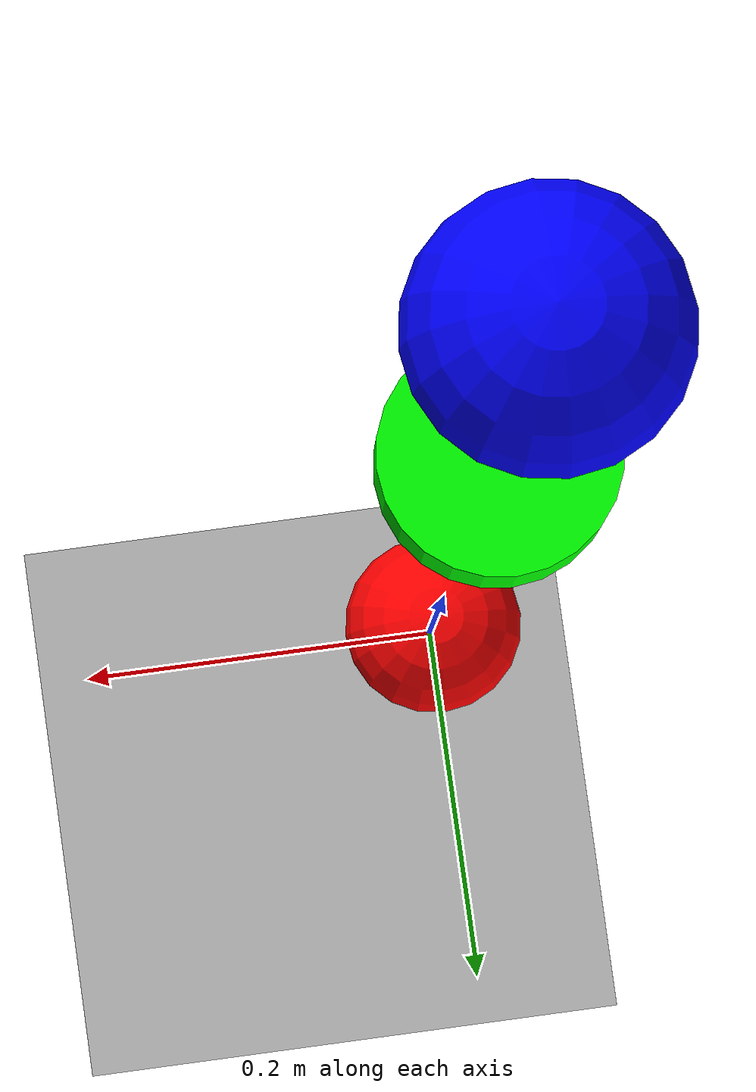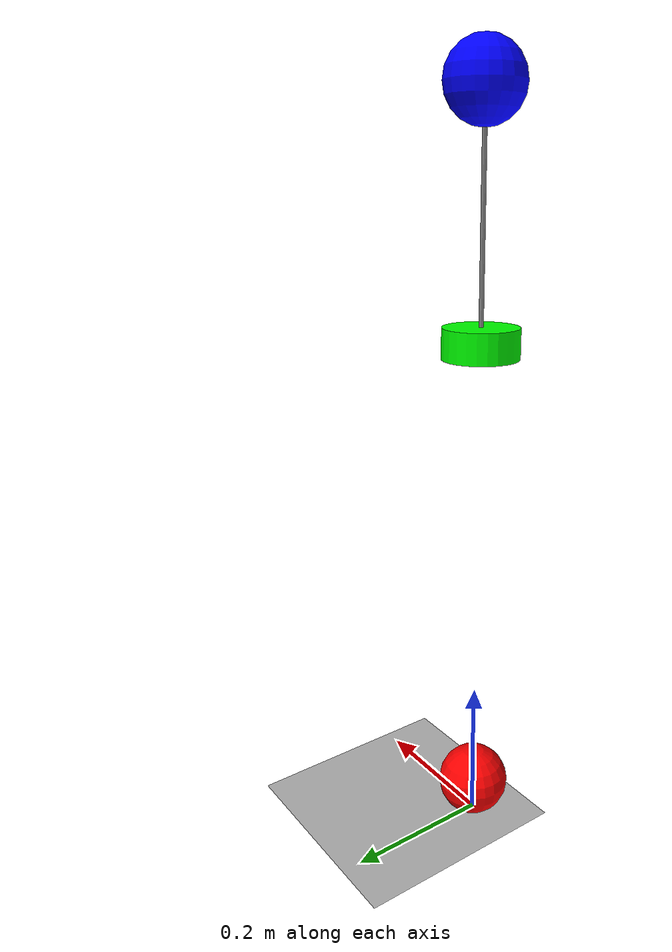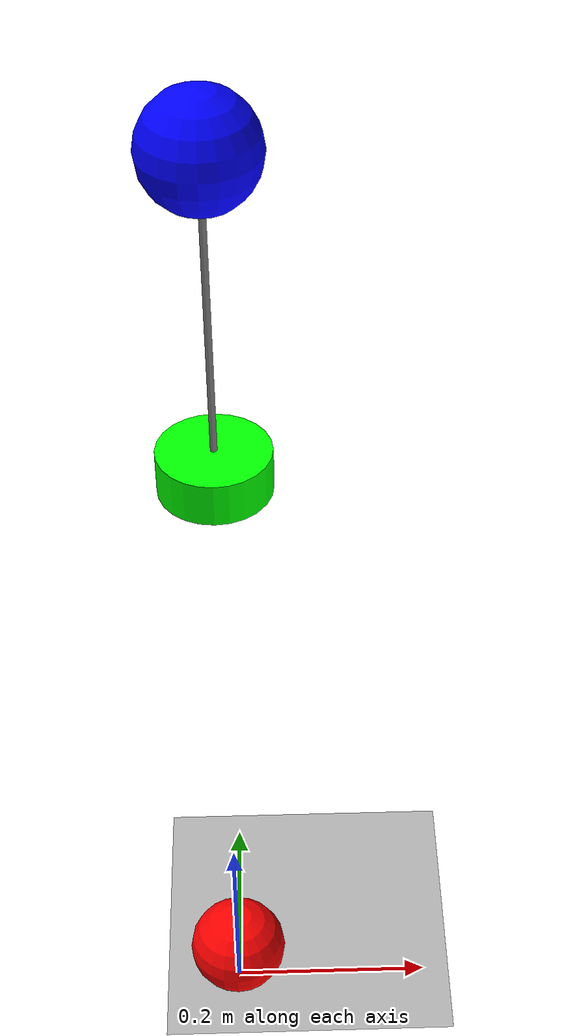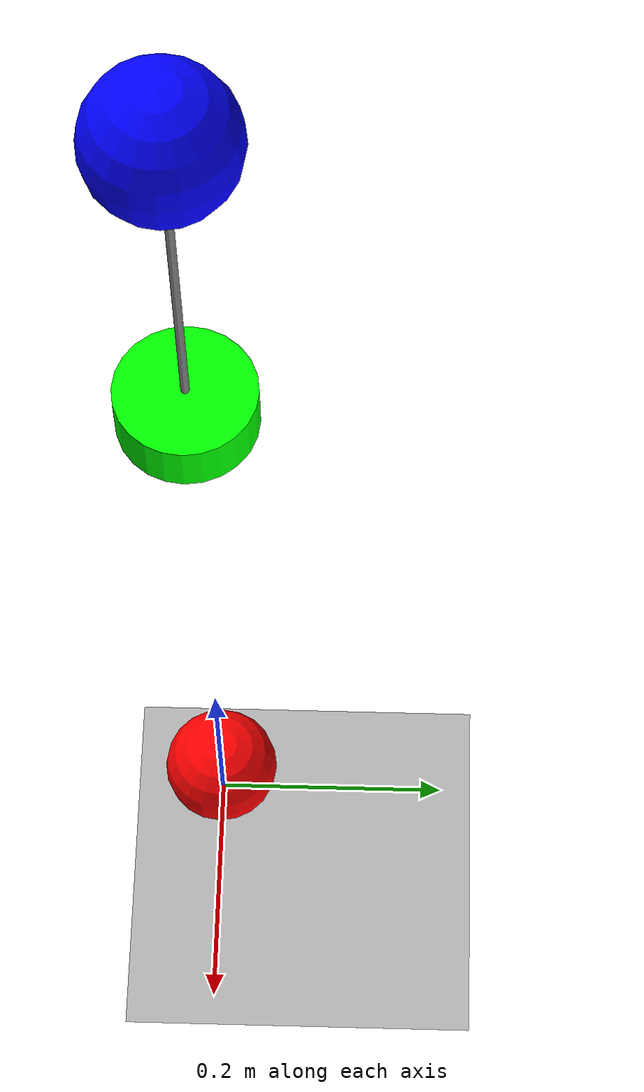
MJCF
<mujoco model="spring_scale">
    <compiler angle="radian"/>
    <option gravity="0 0 -9.81"/>  <!-- Standard gravity -->

    <worldbody>
        <!-- Ground Plane (with high friction to prevent rolling) -->
        <geom name="ground" type="plane" pos="0 0 0" size="2 2 0.1" rgba="0.7 0.7 0.7 1" friction="1 1 1"/>

        <!-- Fixed anchor point -->
        <body name="anchor" pos="0 0 1">
            <geom type="sphere" size="0.05" rgba="0 0 1 1"/>  <!-- Blue anchor sphere -->
            <site name="anchor_site" pos="0 0 0"/>

            <!-- Moving platform (spring scale slider) -->
            <body name="slider" pos="0 0 -0.3">
                <joint name="slider_joint" type="slide" axis="0 0 1" damping="1"/>
                <geom type="cylinder" size="0.05 0.02" rgba="0 1 0 1"/>  <!-- Green slider -->
                <site name="slider_site" pos="0 0 0"/>
            </body>
        </body>

        <!-- The red ball is now detached and placed on the ground -->
        <body name="mass" pos="0 0 0.05">  <!-- Slightly above the ground to prevent penetration -->
            <geom name="test_mass" type="sphere" size="0.05" density="1000" rgba="1 0 0 1"/>
        </body>
    </worldbody>

    <!-- Tendons for the Spring Scale -->
    <tendon>
        <!-- Spring from anchor to slider -->
        <spatial name="spring1" range="0.3 0.7" stiffness="50" damping="2">
            <site site="anchor_site"/>
            <site site="slider_site"/>
        </spatial>
    </tendon>
<!-- The only question I have is whether the LLM can attach the red ball to the green cylinder (called the slider
in this case) through the use of a tendon -->
</mujoco>
